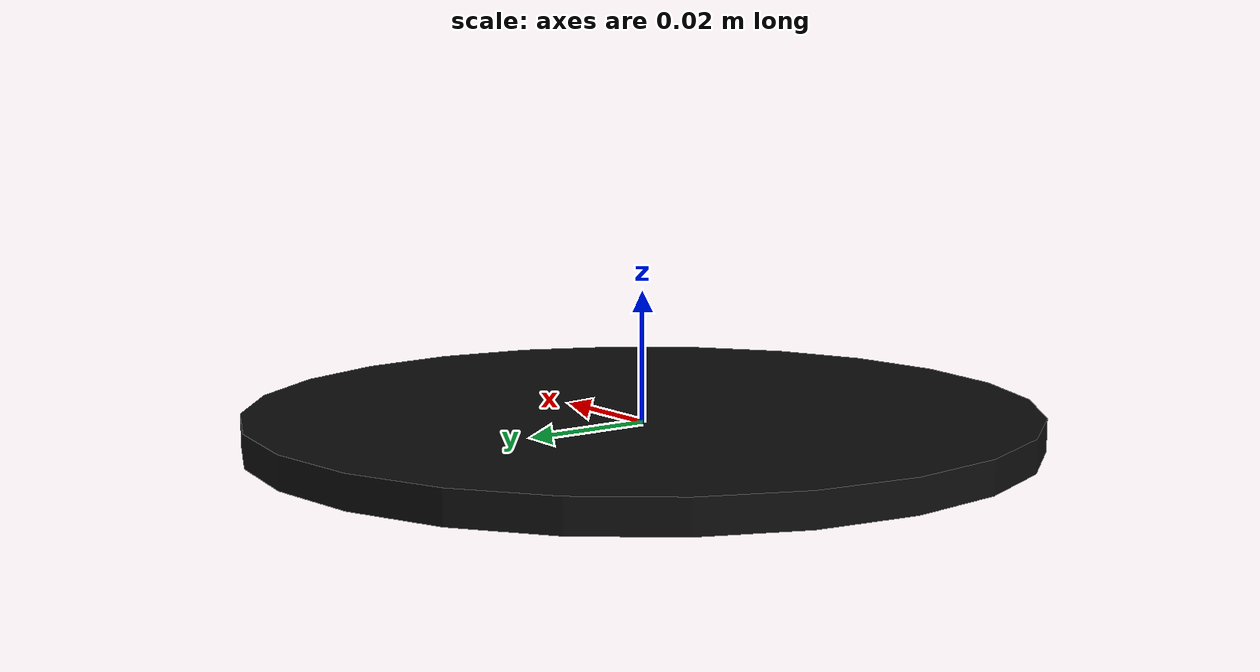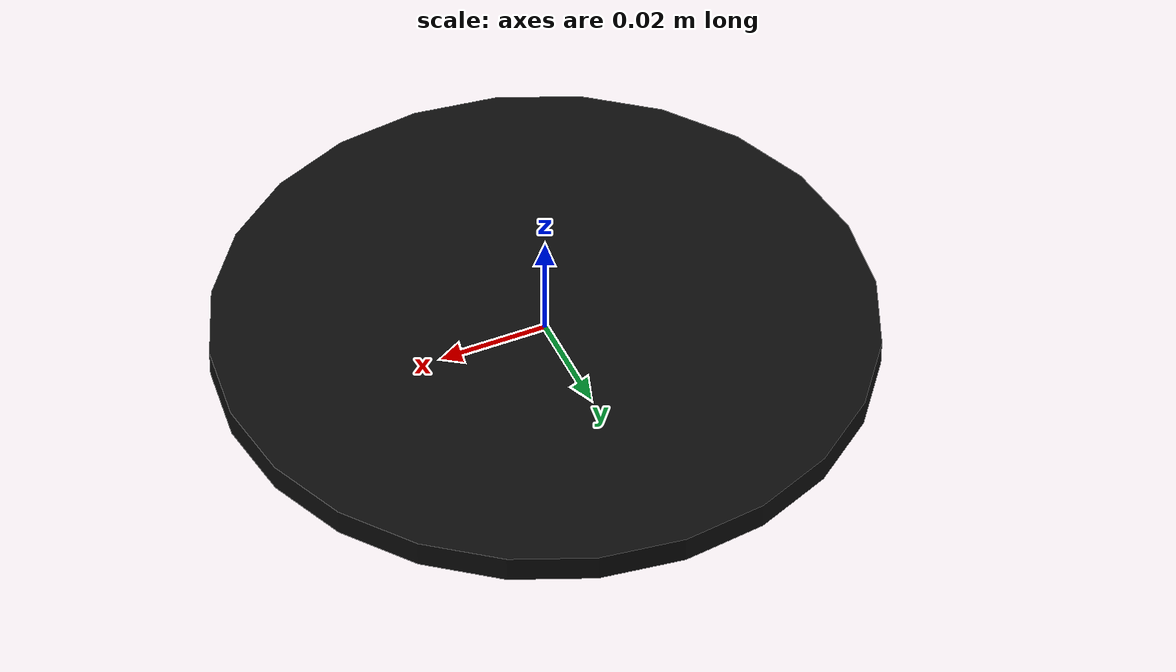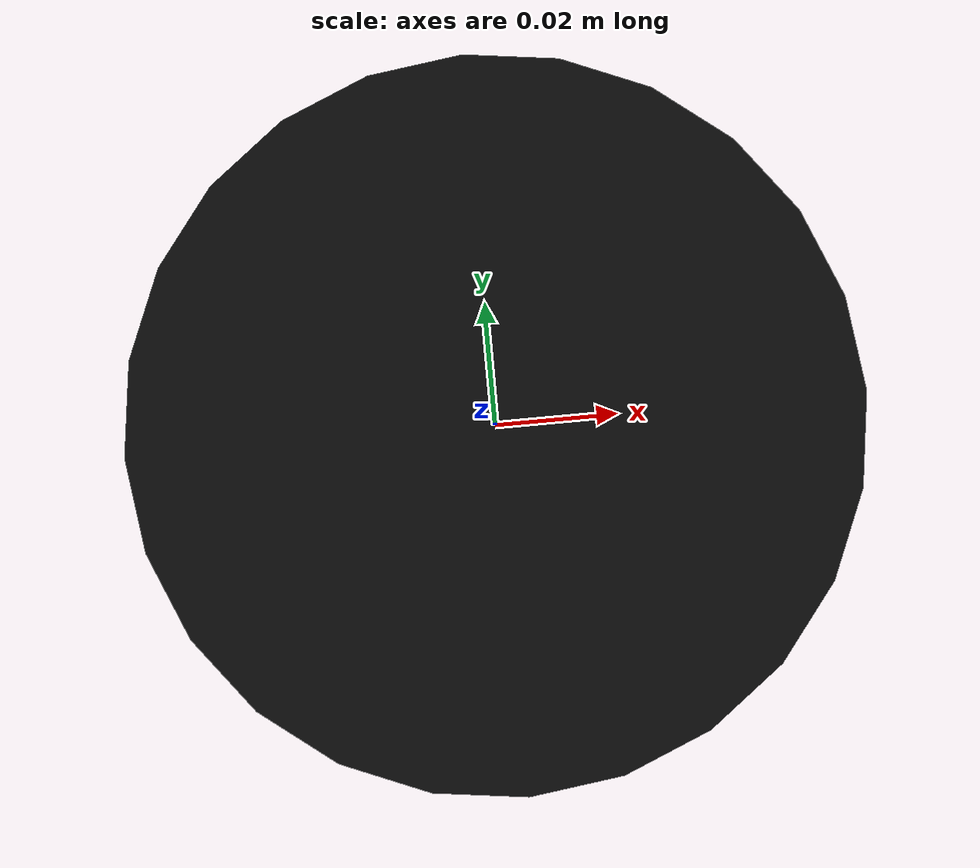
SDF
<?xml version="1.0" ?>
<sdf version="1.6">
  <model name="black_crop">
    <static>true</static>
    <link name="link">
      <visual name="visual">
        <geometry>
          <cylinder>
            <radius>0.06</radius>
            <length>0.005</length>
          </cylinder>
        </geometry>
        <material>
          <ambient>0.05 0.05 0.05 1</ambient>
          <diffuse>0.05 0.05 0.05 1</diffuse>
          <specular>0.0 0.0 0.0 1</specular>
          <emissive>0.0 0.0 0.0 1</emissive>
        </material>
      </visual>
      <collision name="collision">
        <geometry>
          <cylinder>
            <radius>0.06</radius>
            <length>0.005</length>
          </cylinder>
        </geometry>
      </collision>
    </link>
  </model>
</sdf>
